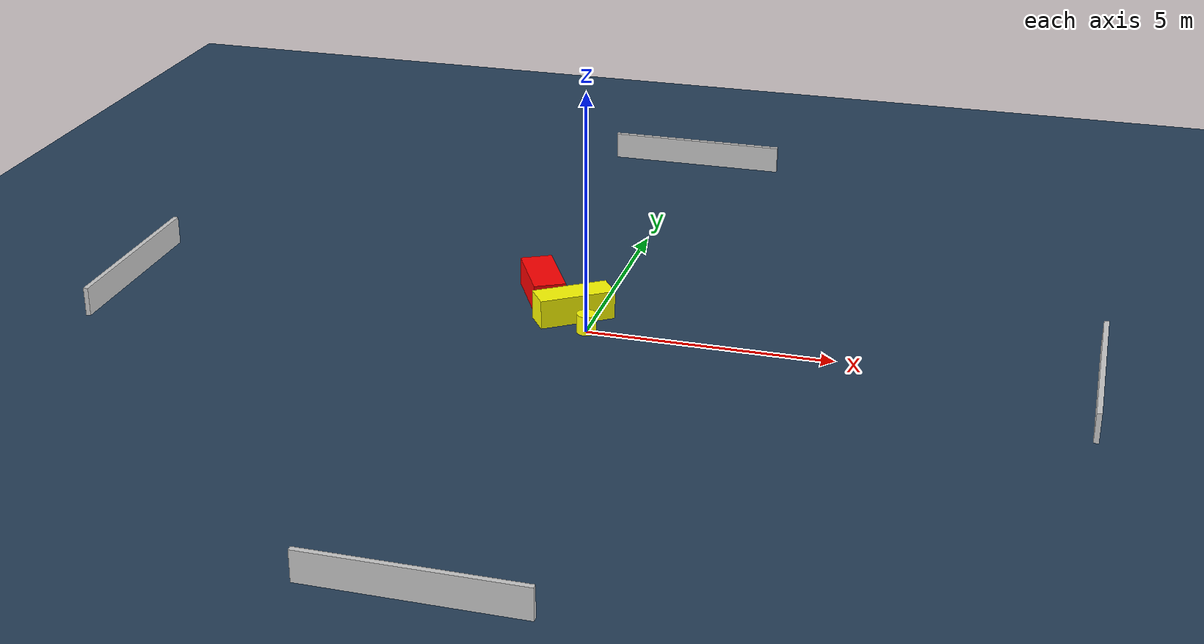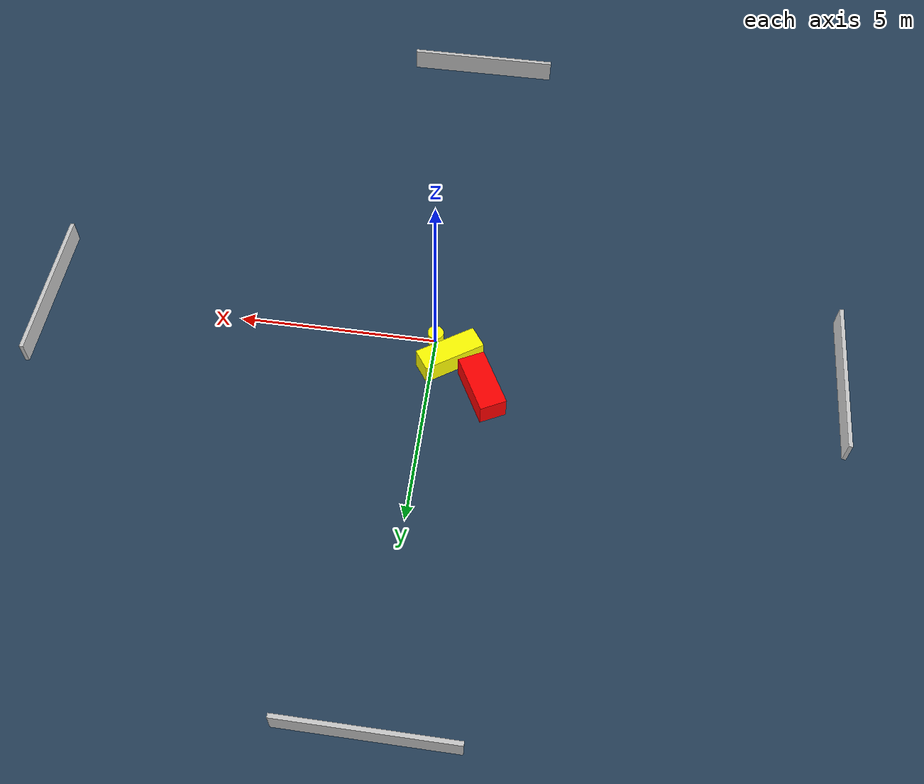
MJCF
<?xml version="1.0" ?>
<mujoco model="generated_environment">
  <option timestep="0.01" integrator="RK4" cone="elliptic"/>
  <default>
    <geom density="1"/>
  </default>
  <asset>
    <texture builtin="gradient" height="3072" name="skybox" rgb1="0.3 0.5 0.7" rgb2="0 0 0" type="skybox" width="512"/>
    <texture builtin="checker" height="300" name="groundplane" rgb1="0.2 0.3 0.4" rgb2="0.1 0.2 0.3" type="2d" width="300"/>
    <material name="groundplane" reflectance="0.2" texrepeat="5 5" texture="groundplane"/>
  </asset>
  <worldbody>
    <light dir="0 0 -1" directional="true" pos="0 0 1.5"/>
    <geom condim="3" friction="0.5 0.005 0.001" material="groundplane" name="floor" pos="0 0 0" size="0 0 0.05" type="plane"/>
    <body name="walls">
      <geom name="wall_1" condim="4" pos="-10.0 0.0 0.3" rgba="0.800000011920929 0.800000011920929 0.800000011920929 1.0" size="0.05 2.0 0.3" type="box"/>
      <geom name="wall_2" condim="4" pos="10.0 0.0 0.3" rgba="0.800000011920929 0.800000011920929 0.800000011920929 1.0" size="0.05 2.0 0.3" type="box"/>
      <geom name="wall_3" condim="4" pos="0.0 -10.0 0.3" rgba="0.800000011920929 0.800000011920929 0.800000011920929 1.0" size="2.0 0.05 0.3" type="box"/>
      <geom name="wall_4" condim="4" pos="0.0 10.0 0.3" rgba="0.800000011920929 0.800000011920929 0.800000011920929 1.0" size="2.0 0.05 0.3" type="box"/>
    </body>
    <body name="robot">
      <joint name="joint_x" type="slide" pos="0 0 0" axis="1 0 0"/>
      <joint name="joint_y" type="slide" pos="0 0 0" axis="0 1 0"/>
      <geom name="robot" type="cylinder" pos="0.0 0.0 0.2" size="0.2 0.2 0.0" mass="5.0" friction="1.0 0.005 0.0001" condim="4" rgba="1.0 1.0 0.0 1.0"/>
    </body>
    <body name="obstacle_1_movable">
      <geom name="obstacle_1_movable" condim="4" pos="-0.42760503293417834 0.5589837808003753 0.3" euler="0 0 34.5861983589581" friction="0.0 0.005 0.001" rgba="1.0 1.0 0.0 1.0" size="0.7883897652990286 0.2893740271651001 0.3" type="box" mass="0.1"/>
      <joint type="free"/>
    </body>
    <body name="obstacle_2_static">
      <geom name="obstacle_2_static" condim="4" pos="-1.3236494810205768 1.375512575155479 0.3" euler="0 0 117.80635928747304" friction="0.0 0.005 0.001" rgba="1.0 0.0 0.0 1.0" size="0.7568892562025213 0.33376803328323934 0.3" type="box"/>
    </body>
  </worldbody>
  <actuator>
    <motor name="actuator_x" joint="joint_x" gear="1" ctrlrange="-1 1"/>
    <motor name="actuator_y" joint="joint_y" gear="1" ctrlrange="-1 1"/>
  </actuator>
</mujoco>
